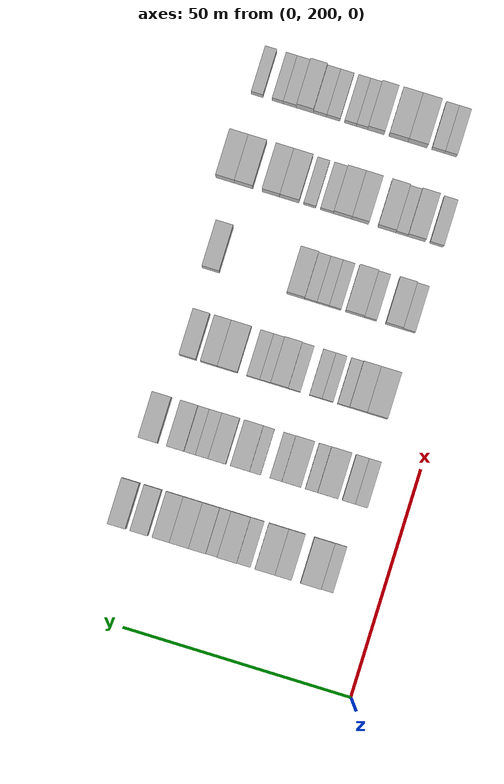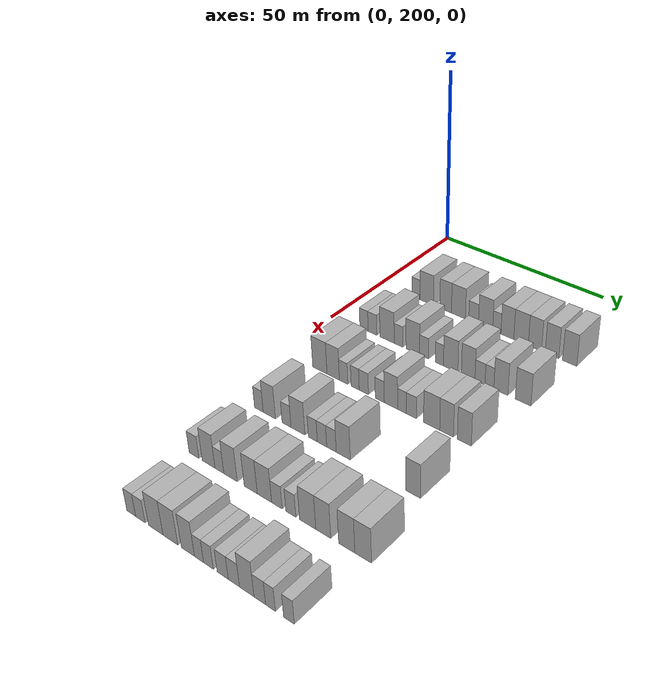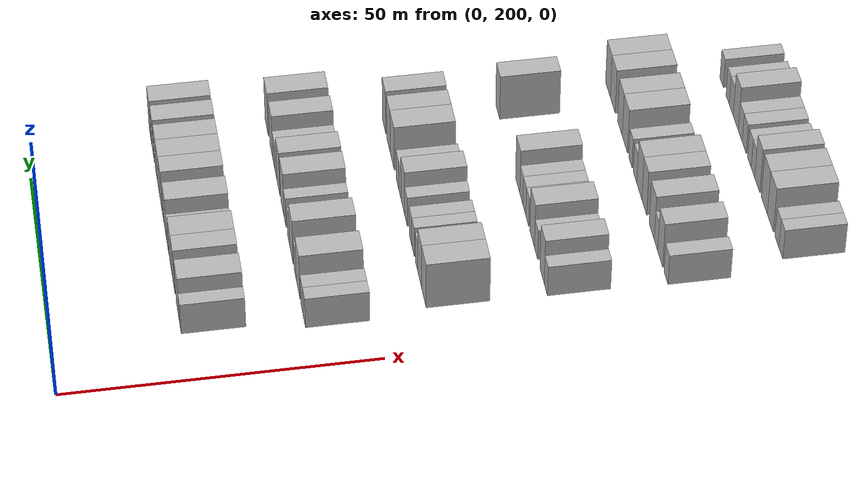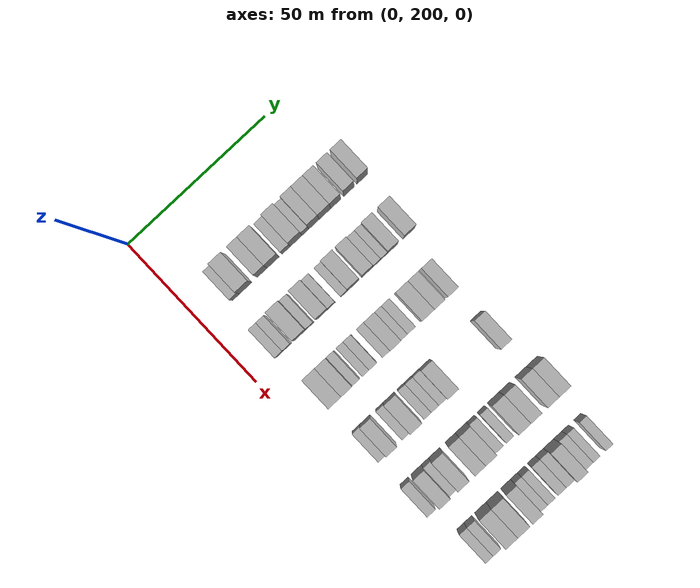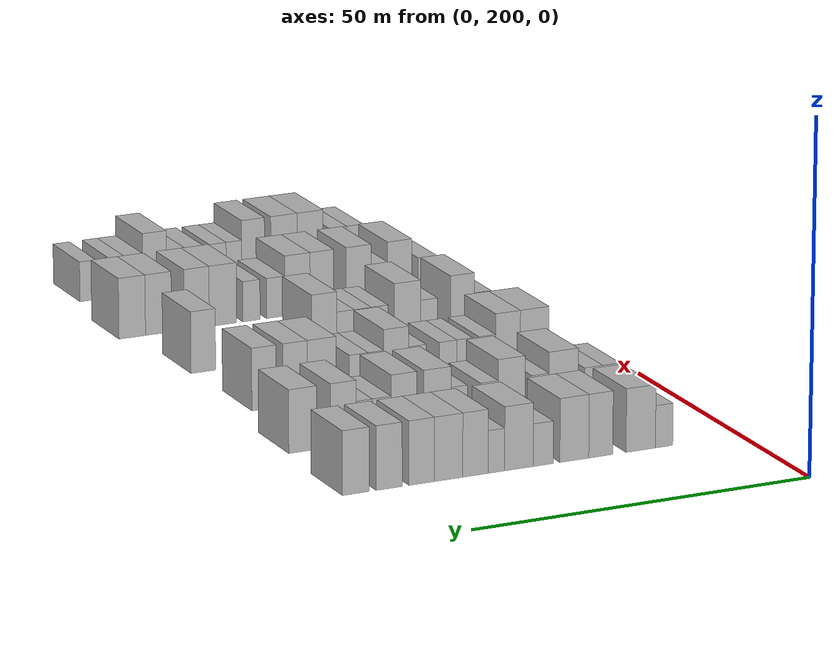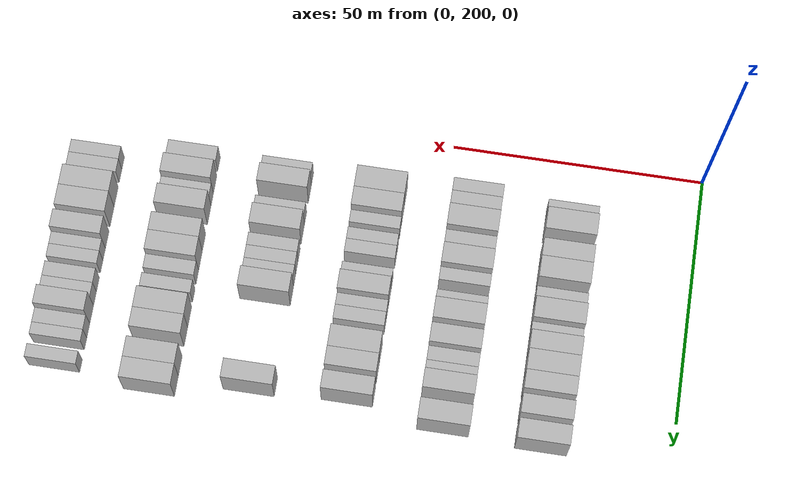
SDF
<sdf version="1.6">
 <world name="default">
  <model name="building_140">
   <static>1</static>
   <pose>25.0000 211.5356 0 0.000000 0.000000 0.000000</pose>
   <link name="link">
    <pose>0 0 3.00 0 0 0</pose>
    <collision name="collision"><geometry><box><size>10.0000 2.6254 6.0000</size></box></geometry></collision>
    <visual name="visual">
     <cast_shadows>0</cast_shadows>
     <geometry><box><size>10.0000 2.6254 6.0000</size></box></geometry>
     <material>
      <script>
       <uri>model://HANNAS_wall/materials/scripts</uri>
       <uri>model://HANNAS_wall/materials/textures</uri>
       <name>vrc/HANNAS_wall</name>
      </script>
     </material>
    </visual>
   </link>
  </model>
  <model name="building_141">
   <static>1</static>
   <pose>25.0000 215.0727 0 0.000000 0.000000 0.000000</pose>
   <link name="link">
    <pose>0 0 4.50 0 0 0</pose>
    <collision name="collision"><geometry><box><size>10.0000 4.4486 9.0000</size></box></geometry></collision>
    <visual name="visual">
     <cast_shadows>0</cast_shadows>
     <geometry><box><size>10.0000 4.4486 9.0000</size></box></geometry>
     <material>
      <script>
       <uri>model://HANNAS_wall/materials/scripts</uri>
       <uri>model://HANNAS_wall/materials/textures</uri>
       <name>vrc/HANNAS_wall</name>
      </script>
     </material>
    </visual>
   </link>
  </model>
  <model name="building_142">
   <static>1</static>
   <pose>25.0000 221.1062 0 0.000000 0.000000 0.000000</pose>
   <link name="link">
    <pose>0 0 4.50 0 0 0</pose>
    <collision name="collision"><geometry><box><size>10.0000 3.6184 9.0000</size></box></geometry></collision>
    <visual name="visual">
     <cast_shadows>0</cast_shadows>
     <geometry><box><size>10.0000 3.6184 9.0000</size></box></geometry>
     <material>
      <script>
       <uri>model://HANNAS_wall/materials/scripts</uri>
       <uri>model://HANNAS_wall/materials/textures</uri>
       <name>vrc/HANNAS_wall</name>
      </script>
     </material>
    </visual>
   </link>
  </model>
  <model name="building_143">
   <static>1</static>
   <pose>25.0000 225.0852 0 0.000000 0.000000 0.000000</pose>
   <link name="link">
    <pose>0 0 4.50 0 0 0</pose>
    <collision name="collision"><geometry><box><size>10.0000 4.3398 9.0000</size></box></geometry></collision>
    <visual name="visual">
     <cast_shadows>0</cast_shadows>
     <geometry><box><size>10.0000 4.3398 9.0000</size></box></geometry>
     <material>
      <script>
       <uri>model://HANNAS_wall/materials/scripts</uri>
       <uri>model://HANNAS_wall/materials/textures</uri>
       <name>vrc/HANNAS_wall</name>
      </script>
     </material>
    </visual>
   </link>
  </model>
  <model name="building_144">
   <static>1</static>
   <pose>25.0000 229.7429 0 0.000000 0.000000 0.000000</pose>
   <link name="link">
    <pose>0 0 3.00 0 0 0</pose>
    <collision name="collision"><geometry><box><size>10.0000 2.9756 6.0000</size></box></geometry></collision>
    <visual name="visual">
     <cast_shadows>0</cast_shadows>
     <geometry><box><size>10.0000 2.9756 6.0000</size></box></geometry>
     <material>
      <script>
       <uri>model://HANNAS_wall/materials/scripts</uri>
       <uri>model://HANNAS_wall/materials/textures</uri>
       <name>vrc/HANNAS_wall</name>
      </script>
     </material>
    </visual>
   </link>
  </model>
  <model name="building_145">
   <static>1</static>
   <pose>25.0000 233.3577 0 0.000000 0.000000 0.000000</pose>
   <link name="link">
    <pose>0 0 4.50 0 0 0</pose>
    <collision name="collision"><geometry><box><size>10.0000 4.2539 9.0000</size></box></geometry></collision>
    <visual name="visual">
     <cast_shadows>0</cast_shadows>
     <geometry><box><size>10.0000 4.2539 9.0000</size></box></geometry>
     <material>
      <script>
       <uri>model://HANNAS_wall/materials/scripts</uri>
       <uri>model://HANNAS_wall/materials/textures</uri>
       <name>vrc/HANNAS_wall</name>
      </script>
     </material>
    </visual>
   </link>
  </model>
  <model name="building_146">
   <static>1</static>
   <pose>25.0000 236.7160 0 0.000000 0.000000 0.000000</pose>
   <link name="link">
    <pose>0 0 3.00 0 0 0</pose>
    <collision name="collision"><geometry><box><size>10.0000 2.4627 6.0000</size></box></geometry></collision>
    <visual name="visual">
     <cast_shadows>0</cast_shadows>
     <geometry><box><size>10.0000 2.4627 6.0000</size></box></geometry>
     <material>
      <script>
       <uri>model://HANNAS_wall/materials/scripts</uri>
       <uri>model://HANNAS_wall/materials/textures</uri>
       <name>vrc/HANNAS_wall</name>
      </script>
     </material>
    </visual>
   </link>
  </model>
  <model name="building_147">
   <static>1</static>
   <pose>25.0000 239.8195 0 0.000000 0.000000 0.000000</pose>
   <link name="link">
    <pose>0 0 4.50 0 0 0</pose>
    <collision name="collision"><geometry><box><size>10.0000 3.7442 9.0000</size></box></geometry></collision>
    <visual name="visual">
     <cast_shadows>0</cast_shadows>
     <geometry><box><size>10.0000 3.7442 9.0000</size></box></geometry>
     <material>
      <script>
       <uri>model://HANNAS_wall/materials/scripts</uri>
       <uri>model://HANNAS_wall/materials/textures</uri>
       <name>vrc/HANNAS_wall</name>
      </script>
     </material>
    </visual>
   </link>
  </model>
  <model name="building_148">
   <static>1</static>
   <pose>25.0000 243.7803 0 0.000000 0.000000 0.000000</pose>
   <link name="link">
    <pose>0 0 4.50 0 0 0</pose>
    <collision name="collision"><geometry><box><size>10.0000 4.1774 9.0000</size></box></geometry></collision>
    <visual name="visual">
     <cast_shadows>0</cast_shadows>
     <geometry><box><size>10.0000 4.1774 9.0000</size></box></geometry>
     <material>
      <script>
       <uri>model://HANNAS_wall/materials/scripts</uri>
       <uri>model://HANNAS_wall/materials/textures</uri>
       <name>vrc/HANNAS_wall</name>
      </script>
     </material>
    </visual>
   </link>
  </model>
  <model name="building_149">
   <static>1</static>
   <pose>25.0000 247.7418 0 0.000000 0.000000 0.000000</pose>
   <link name="link">
    <pose>0 0 4.50 0 0 0</pose>
    <collision name="collision"><geometry><box><size>10.0000 3.7457 9.0000</size></box></geometry></collision>
    <visual name="visual">
     <cast_shadows>0</cast_shadows>
     <geometry><box><size>10.0000 3.7457 9.0000</size></box></geometry>
     <material>
      <script>
       <uri>model://HANNAS_wall/materials/scripts</uri>
       <uri>model://HANNAS_wall/materials/textures</uri>
       <name>vrc/HANNAS_wall</name>
      </script>
     </material>
    </visual>
   </link>
  </model>
  <model name="building_150">
   <static>1</static>
   <pose>25.0000 252.5206 0 0.000000 0.000000 0.000000</pose>
   <link name="link">
    <pose>0 0 4.50 0 0 0</pose>
    <collision name="collision"><geometry><box><size>10.0000 3.8118 9.0000</size></box></geometry></collision>
    <visual name="visual">
     <cast_shadows>0</cast_shadows>
     <geometry><box><size>10.0000 3.8118 9.0000</size></box></geometry>
     <material>
      <script>
       <uri>model://HANNAS_wall/materials/scripts</uri>
       <uri>model://HANNAS_wall/materials/textures</uri>
       <name>vrc/HANNAS_wall</name>
      </script>
     </material>
    </visual>
   </link>
  </model>
  <model name="building_151">
   <static>1</static>
   <pose>25.0000 257.3781 0 0.000000 0.000000 0.000000</pose>
   <link name="link">
    <pose>0 0 4.50 0 0 0</pose>
    <collision name="collision"><geometry><box><size>10.0000 3.9034 9.0000</size></box></geometry></collision>
    <visual name="visual">
     <cast_shadows>0</cast_shadows>
     <geometry><box><size>10.0000 3.9034 9.0000</size></box></geometry>
     <material>
      <script>
       <uri>model://HANNAS_wall/materials/scripts</uri>
       <uri>model://HANNAS_wall/materials/textures</uri>
       <name>vrc/HANNAS_wall</name>
      </script>
     </material>
    </visual>
   </link>
  </model>
  <model name="building_318">
   <static>1</static>
   <pose>44.0000 209.8806 0 0.000000 0.000000 0.000000</pose>
   <link name="link">
    <pose>0 0 3.00 0 0 0</pose>
    <collision name="collision"><geometry><box><size>10.0000 2.6604 6.0000</size></box></geometry></collision>
    <visual name="visual">
     <cast_shadows>0</cast_shadows>
     <geometry><box><size>10.0000 2.6604 6.0000</size></box></geometry>
     <material>
      <script>
       <uri>model://HANNAS_wall/materials/scripts</uri>
       <uri>model://HANNAS_wall/materials/textures</uri>
       <name>vrc/HANNAS_wall</name>
      </script>
     </material>
    </visual>
   </link>
  </model>
  <model name="building_319">
   <static>1</static>
   <pose>44.0000 212.6104 0 0.000000 0.000000 0.000000</pose>
   <link name="link">
    <pose>0 0 3.00 0 0 0</pose>
    <collision name="collision"><geometry><box><size>10.0000 2.7992 6.0000</size></box></geometry></collision>
    <visual name="visual">
     <cast_shadows>0</cast_shadows>
     <geometry><box><size>10.0000 2.7992 6.0000</size></box></geometry>
     <material>
      <script>
       <uri>model://HANNAS_wall/materials/scripts</uri>
       <uri>model://HANNAS_wall/materials/textures</uri>
       <name>vrc/HANNAS_wall</name>
      </script>
     </material>
    </visual>
   </link>
  </model>
  <model name="building_320">
   <static>1</static>
   <pose>44.0000 217.2324 0 0.000000 0.000000 0.000000</pose>
   <link name="link">
    <pose>0 0 4.50 0 0 0</pose>
    <collision name="collision"><geometry><box><size>10.0000 4.4450 9.0000</size></box></geometry></collision>
    <visual name="visual">
     <cast_shadows>0</cast_shadows>
     <geometry><box><size>10.0000 4.4450 9.0000</size></box></geometry>
     <material>
      <script>
       <uri>model://HANNAS_wall/materials/scripts</uri>
       <uri>model://HANNAS_wall/materials/textures</uri>
       <name>vrc/HANNAS_wall</name>
      </script>
     </material>
    </visual>
   </link>
  </model>
  <model name="building_321">
   <static>1</static>
   <pose>44.0000 220.7763 0 0.000000 0.000000 0.000000</pose>
   <link name="link">
    <pose>0 0 3.00 0 0 0</pose>
    <collision name="collision"><geometry><box><size>10.0000 2.6428 6.0000</size></box></geometry></collision>
    <visual name="visual">
     <cast_shadows>0</cast_shadows>
     <geometry><box><size>10.0000 2.6428 6.0000</size></box></geometry>
     <material>
      <script>
       <uri>model://HANNAS_wall/materials/scripts</uri>
       <uri>model://HANNAS_wall/materials/textures</uri>
       <name>vrc/HANNAS_wall</name>
      </script>
     </material>
    </visual>
   </link>
  </model>
  <model name="building_322">
   <static>1</static>
   <pose>44.0000 225.1639 0 0.000000 0.000000 0.000000</pose>
   <link name="link">
    <pose>0 0 4.50 0 0 0</pose>
    <collision name="collision"><geometry><box><size>10.0000 4.1323 9.0000</size></box></geometry></collision>
    <visual name="visual">
     <cast_shadows>0</cast_shadows>
     <geometry><box><size>10.0000 4.1323 9.0000</size></box></geometry>
     <material>
      <script>
       <uri>model://HANNAS_wall/materials/scripts</uri>
       <uri>model://HANNAS_wall/materials/textures</uri>
       <name>vrc/HANNAS_wall</name>
      </script>
     </material>
    </visual>
   </link>
  </model>
  <model name="building_323">
   <static>1</static>
   <pose>44.0000 228.5464 0 0.000000 0.000000 0.000000</pose>
   <link name="link">
    <pose>0 0 3.00 0 0 0</pose>
    <collision name="collision"><geometry><box><size>10.0000 2.6327 6.0000</size></box></geometry></collision>
    <visual name="visual">
     <cast_shadows>0</cast_shadows>
     <geometry><box><size>10.0000 2.6327 6.0000</size></box></geometry>
     <material>
      <script>
       <uri>model://HANNAS_wall/materials/scripts</uri>
       <uri>model://HANNAS_wall/materials/textures</uri>
       <name>vrc/HANNAS_wall</name>
      </script>
     </material>
    </visual>
   </link>
  </model>
  <model name="building_324">
   <static>1</static>
   <pose>44.0000 233.0702 0 0.000000 0.000000 0.000000</pose>
   <link name="link">
    <pose>0 0 3.00 0 0 0</pose>
    <collision name="collision"><geometry><box><size>10.0000 2.4149 6.0000</size></box></geometry></collision>
    <visual name="visual">
     <cast_shadows>0</cast_shadows>
     <geometry><box><size>10.0000 2.4149 6.0000</size></box></geometry>
     <material>
      <script>
       <uri>model://HANNAS_wall/materials/scripts</uri>
       <uri>model://HANNAS_wall/materials/textures</uri>
       <name>vrc/HANNAS_wall</name>
      </script>
     </material>
    </visual>
   </link>
  </model>
  <model name="building_325">
   <static>1</static>
   <pose>44.0000 236.3657 0 0.000000 0.000000 0.000000</pose>
   <link name="link">
    <pose>0 0 4.50 0 0 0</pose>
    <collision name="collision"><geometry><box><size>10.0000 4.1761 9.0000</size></box></geometry></collision>
    <visual name="visual">
     <cast_shadows>0</cast_shadows>
     <geometry><box><size>10.0000 4.1761 9.0000</size></box></geometry>
     <material>
      <script>
       <uri>model://HANNAS_wall/materials/scripts</uri>
       <uri>model://HANNAS_wall/materials/textures</uri>
       <name>vrc/HANNAS_wall</name>
      </script>
     </material>
    </visual>
   </link>
  </model>
  <model name="building_326">
   <static>1</static>
   <pose>44.0000 241.3848 0 0.000000 0.000000 0.000000</pose>
   <link name="link">
    <pose>0 0 4.50 0 0 0</pose>
    <collision name="collision"><geometry><box><size>10.0000 3.8622 9.0000</size></box></geometry></collision>
    <visual name="visual">
     <cast_shadows>0</cast_shadows>
     <geometry><box><size>10.0000 3.8622 9.0000</size></box></geometry>
     <material>
      <script>
       <uri>model://HANNAS_wall/materials/scripts</uri>
       <uri>model://HANNAS_wall/materials/textures</uri>
       <name>vrc/HANNAS_wall</name>
      </script>
     </material>
    </visual>
   </link>
  </model>
  <model name="building_327">
   <static>1</static>
   <pose>44.0000 244.7178 0 0.000000 0.000000 0.000000</pose>
   <link name="link">
    <pose>0 0 3.00 0 0 0</pose>
    <collision name="collision"><geometry><box><size>10.0000 2.8037 6.0000</size></box></geometry></collision>
    <visual name="visual">
     <cast_shadows>0</cast_shadows>
     <geometry><box><size>10.0000 2.8037 6.0000</size></box></geometry>
     <material>
      <script>
       <uri>model://HANNAS_wall/materials/scripts</uri>
       <uri>model://HANNAS_wall/materials/textures</uri>
       <name>vrc/HANNAS_wall</name>
      </script>
     </material>
    </visual>
   </link>
  </model>
  <model name="building_328">
   <static>1</static>
   <pose>44.0000 247.3366 0 0.000000 0.000000 0.000000</pose>
   <link name="link">
    <pose>0 0 3.00 0 0 0</pose>
    <collision name="collision"><geometry><box><size>10.0000 2.4340 6.0000</size></box></geometry></collision>
    <visual name="visual">
     <cast_shadows>0</cast_shadows>
     <geometry><box><size>10.0000 2.4340 6.0000</size></box></geometry>
     <material>
      <script>
       <uri>model://HANNAS_wall/materials/scripts</uri>
       <uri>model://HANNAS_wall/materials/textures</uri>
       <name>vrc/HANNAS_wall</name>
      </script>
     </material>
    </visual>
   </link>
  </model>
  <model name="building_329">
   <static>1</static>
   <pose>44.0000 250.4609 0 0.000000 0.000000 0.000000</pose>
   <link name="link">
    <pose>0 0 4.50 0 0 0</pose>
    <collision name="collision"><geometry><box><size>10.0000 3.8146 9.0000</size></box></geometry></collision>
    <visual name="visual">
     <cast_shadows>0</cast_shadows>
     <geometry><box><size>10.0000 3.8146 9.0000</size></box></geometry>
     <material>
      <script>
       <uri>model://HANNAS_wall/materials/scripts</uri>
       <uri>model://HANNAS_wall/materials/textures</uri>
       <name>vrc/HANNAS_wall</name>
      </script>
     </material>
    </visual>
   </link>
  </model>
  <model name="building_330">
   <static>1</static>
   <pose>44.0000 256.4477 0 0.000000 0.000000 0.000000</pose>
   <link name="link">
    <pose>0 0 4.50 0 0 0</pose>
    <collision name="collision"><geometry><box><size>10.0000 4.1590 9.0000</size></box></geometry></collision>
    <visual name="visual">
     <cast_shadows>0</cast_shadows>
     <geometry><box><size>10.0000 4.1590 9.0000</size></box></geometry>
     <material>
      <script>
       <uri>model://HANNAS_wall/materials/scripts</uri>
       <uri>model://HANNAS_wall/materials/textures</uri>
       <name>vrc/HANNAS_wall</name>
      </script>
     </material>
    </visual>
   </link>
  </model>
  <model name="building_498">
   <static>1</static>
   <pose>63.0000 212.2461 0 0.000000 0.000000 0.000000</pose>
   <link name="link">
    <pose>0 0 4.50 0 0 0</pose>
    <collision name="collision"><geometry><box><size>10.0000 4.4613 9.0000</size></box></geometry></collision>
    <visual name="visual">
     <cast_shadows>0</cast_shadows>
     <geometry><box><size>10.0000 4.4613 9.0000</size></box></geometry>
     <material>
      <script>
       <uri>model://HANNAS_wall/materials/scripts</uri>
       <uri>model://HANNAS_wall/materials/textures</uri>
       <name>vrc/HANNAS_wall</name>
      </script>
     </material>
    </visual>
   </link>
  </model>
  <model name="building_499">
   <static>1</static>
   <pose>63.0000 216.3930 0 0.000000 0.000000 0.000000</pose>
   <link name="link">
    <pose>0 0 4.50 0 0 0</pose>
    <collision name="collision"><geometry><box><size>10.0000 3.8325 9.0000</size></box></geometry></collision>
    <visual name="visual">
     <cast_shadows>0</cast_shadows>
     <geometry><box><size>10.0000 3.8325 9.0000</size></box></geometry>
     <material>
      <script>
       <uri>model://HANNAS_wall/materials/scripts</uri>
       <uri>model://HANNAS_wall/materials/textures</uri>
       <name>vrc/HANNAS_wall</name>
      </script>
     </material>
    </visual>
   </link>
  </model>
  <model name="building_500">
   <static>1</static>
   <pose>63.0000 219.5952 0 0.000000 0.000000 0.000000</pose>
   <link name="link">
    <pose>0 0 3.00 0 0 0</pose>
    <collision name="collision"><geometry><box><size>10.0000 2.5718 6.0000</size></box></geometry></collision>
    <visual name="visual">
     <cast_shadows>0</cast_shadows>
     <geometry><box><size>10.0000 2.5718 6.0000</size></box></geometry>
     <material>
      <script>
       <uri>model://HANNAS_wall/materials/scripts</uri>
       <uri>model://HANNAS_wall/materials/textures</uri>
       <name>vrc/HANNAS_wall</name>
      </script>
     </material>
    </visual>
   </link>
  </model>
  <model name="building_501">
   <static>1</static>
   <pose>63.0000 223.0899 0 0.000000 0.000000 0.000000</pose>
   <link name="link">
    <pose>0 0 3.00 0 0 0</pose>
    <collision name="collision"><geometry><box><size>10.0000 2.4177 6.0000</size></box></geometry></collision>
    <visual name="visual">
     <cast_shadows>0</cast_shadows>
     <geometry><box><size>10.0000 2.4177 6.0000</size></box></geometry>
     <material>
      <script>
       <uri>model://HANNAS_wall/materials/scripts</uri>
       <uri>model://HANNAS_wall/materials/textures</uri>
       <name>vrc/HANNAS_wall</name>
      </script>
     </material>
    </visual>
   </link>
  </model>
  <model name="building_502">
   <static>1</static>
   <pose>63.0000 225.6709 0 0.000000 0.000000 0.000000</pose>
   <link name="link">
    <pose>0 0 3.00 0 0 0</pose>
    <collision name="collision"><geometry><box><size>10.0000 2.7441 6.0000</size></box></geometry></collision>
    <visual name="visual">
     <cast_shadows>0</cast_shadows>
     <geometry><box><size>10.0000 2.7441 6.0000</size></box></geometry>
     <material>
      <script>
       <uri>model://HANNAS_wall/materials/scripts</uri>
       <uri>model://HANNAS_wall/materials/textures</uri>
       <name>vrc/HANNAS_wall</name>
      </script>
     </material>
    </visual>
   </link>
  </model>
  <model name="building_503">
   <static>1</static>
   <pose>63.0000 230.3555 0 0.000000 0.000000 0.000000</pose>
   <link name="link">
    <pose>0 0 3.00 0 0 0</pose>
    <collision name="collision"><geometry><box><size>10.0000 2.6252 6.0000</size></box></geometry></collision>
    <visual name="visual">
     <cast_shadows>0</cast_shadows>
     <geometry><box><size>10.0000 2.6252 6.0000</size></box></geometry>
     <material>
      <script>
       <uri>model://HANNAS_wall/materials/scripts</uri>
       <uri>model://HANNAS_wall/materials/textures</uri>
       <name>vrc/HANNAS_wall</name>
      </script>
     </material>
    </visual>
   </link>
  </model>
  <model name="building_504">
   <static>1</static>
   <pose>63.0000 233.5890 0 0.000000 0.000000 0.000000</pose>
   <link name="link">
    <pose>0 0 4.50 0 0 0</pose>
    <collision name="collision"><geometry><box><size>10.0000 3.8418 9.0000</size></box></geometry></collision>
    <visual name="visual">
     <cast_shadows>0</cast_shadows>
     <geometry><box><size>10.0000 3.8418 9.0000</size></box></geometry>
     <material>
      <script>
       <uri>model://HANNAS_wall/materials/scripts</uri>
       <uri>model://HANNAS_wall/materials/textures</uri>
       <name>vrc/HANNAS_wall</name>
      </script>
     </material>
    </visual>
   </link>
  </model>
  <model name="building_505">
   <static>1</static>
   <pose>63.0000 236.7105 0 0.000000 0.000000 0.000000</pose>
   <link name="link">
    <pose>0 0 3.00 0 0 0</pose>
    <collision name="collision"><geometry><box><size>10.0000 2.4013 6.0000</size></box></geometry></collision>
    <visual name="visual">
     <cast_shadows>0</cast_shadows>
     <geometry><box><size>10.0000 2.4013 6.0000</size></box></geometry>
     <material>
      <script>
       <uri>model://HANNAS_wall/materials/scripts</uri>
       <uri>model://HANNAS_wall/materials/textures</uri>
       <name>vrc/HANNAS_wall</name>
      </script>
     </material>
    </visual>
   </link>
  </model>
  <model name="building_506">
   <static>1</static>
   <pose>63.0000 239.3358 0 0.000000 0.000000 0.000000</pose>
   <link name="link">
    <pose>0 0 3.00 0 0 0</pose>
    <collision name="collision"><geometry><box><size>10.0000 2.8493 6.0000</size></box></geometry></collision>
    <visual name="visual">
     <cast_shadows>0</cast_shadows>
     <geometry><box><size>10.0000 2.8493 6.0000</size></box></geometry>
     <material>
      <script>
       <uri>model://HANNAS_wall/materials/scripts</uri>
       <uri>model://HANNAS_wall/materials/textures</uri>
       <name>vrc/HANNAS_wall</name>
      </script>
     </material>
    </visual>
   </link>
  </model>
  <model name="building_507">
   <static>1</static>
   <pose>63.0000 244.9521 0 0.000000 0.000000 0.000000</pose>
   <link name="link">
    <pose>0 0 4.50 0 0 0</pose>
    <collision name="collision"><geometry><box><size>10.0000 4.3834 9.0000</size></box></geometry></collision>
    <visual name="visual">
     <cast_shadows>0</cast_shadows>
     <geometry><box><size>10.0000 4.3834 9.0000</size></box></geometry>
     <material>
      <script>
       <uri>model://HANNAS_wall/materials/scripts</uri>
       <uri>model://HANNAS_wall/materials/textures</uri>
       <name>vrc/HANNAS_wall</name>
      </script>
     </material>
    </visual>
   </link>
  </model>
  <model name="building_508">
   <static>1</static>
   <pose>63.0000 248.9910 0 0.000000 0.000000 0.000000</pose>
   <link name="link">
    <pose>0 0 4.50 0 0 0</pose>
    <collision name="collision"><geometry><box><size>10.0000 3.6943 9.0000</size></box></geometry></collision>
    <visual name="visual">
     <cast_shadows>0</cast_shadows>
     <geometry><box><size>10.0000 3.6943 9.0000</size></box></geometry>
     <material>
      <script>
       <uri>model://HANNAS_wall/materials/scripts</uri>
       <uri>model://HANNAS_wall/materials/textures</uri>
       <name>vrc/HANNAS_wall</name>
      </script>
     </material>
    </visual>
   </link>
  </model>
  <model name="building_509">
   <static>1</static>
   <pose>63.0000 253.6693 0 0.000000 0.000000 0.000000</pose>
   <link name="link">
    <pose>0 0 4.50 0 0 0</pose>
    <collision name="collision"><geometry><box><size>10.0000 3.6624 9.0000</size></box></geometry></collision>
    <visual name="visual">
     <cast_shadows>0</cast_shadows>
     <geometry><box><size>10.0000 3.6624 9.0000</size></box></geometry>
     <material>
      <script>
       <uri>model://HANNAS_wall/materials/scripts</uri>
       <uri>model://HANNAS_wall/materials/textures</uri>
       <name>vrc/HANNAS_wall</name>
      </script>
     </material>
    </visual>
   </link>
  </model>
  <model name="building_675">
   <static>1</static>
   <pose>82.0000 211.0861 0 0.000000 0.000000 0.000000</pose>
   <link name="link">
    <pose>0 0 3.00 0 0 0</pose>
    <collision name="collision"><geometry><box><size>10.0000 2.6873 6.0000</size></box></geometry></collision>
    <visual name="visual">
     <cast_shadows>0</cast_shadows>
     <geometry><box><size>10.0000 2.6873 6.0000</size></box></geometry>
     <material>
      <script>
       <uri>model://HANNAS_wall/materials/scripts</uri>
       <uri>model://HANNAS_wall/materials/textures</uri>
       <name>vrc/HANNAS_wall</name>
      </script>
     </material>
    </visual>
   </link>
  </model>
  <model name="building_676">
   <static>1</static>
   <pose>82.0000 214.3071 0 0.000000 0.000000 0.000000</pose>
   <link name="link">
    <pose>0 0 4.50 0 0 0</pose>
    <collision name="collision"><geometry><box><size>10.0000 3.7546 9.0000</size></box></geometry></collision>
    <visual name="visual">
     <cast_shadows>0</cast_shadows>
     <geometry><box><size>10.0000 3.7546 9.0000</size></box></geometry>
     <material>
      <script>
       <uri>model://HANNAS_wall/materials/scripts</uri>
       <uri>model://HANNAS_wall/materials/textures</uri>
       <name>vrc/HANNAS_wall</name>
      </script>
     </material>
    </visual>
   </link>
  </model>
  <model name="building_677">
   <static>1</static>
   <pose>82.0000 219.5152 0 0.000000 0.000000 0.000000</pose>
   <link name="link">
    <pose>0 0 3.00 0 0 0</pose>
    <collision name="collision"><geometry><box><size>10.0000 2.6616 6.0000</size></box></geometry></collision>
    <visual name="visual">
     <cast_shadows>0</cast_shadows>
     <geometry><box><size>10.0000 2.6616 6.0000</size></box></geometry>
     <material>
      <script>
       <uri>model://HANNAS_wall/materials/scripts</uri>
       <uri>model://HANNAS_wall/materials/textures</uri>
       <name>vrc/HANNAS_wall</name>
      </script>
     </material>
    </visual>
   </link>
  </model>
  <model name="building_678">
   <static>1</static>
   <pose>82.0000 222.9070 0 0.000000 0.000000 0.000000</pose>
   <link name="link">
    <pose>0 0 4.50 0 0 0</pose>
    <collision name="collision"><geometry><box><size>10.0000 4.1220 9.0000</size></box></geometry></collision>
    <visual name="visual">
     <cast_shadows>0</cast_shadows>
     <geometry><box><size>10.0000 4.1220 9.0000</size></box></geometry>
     <material>
      <script>
       <uri>model://HANNAS_wall/materials/scripts</uri>
       <uri>model://HANNAS_wall/materials/textures</uri>
       <name>vrc/HANNAS_wall</name>
      </script>
     </material>
    </visual>
   </link>
  </model>
  <model name="building_679">
   <static>1</static>
   <pose>82.0000 227.2678 0 0.000000 0.000000 0.000000</pose>
   <link name="link">
    <pose>0 0 3.00 0 0 0</pose>
    <collision name="collision"><geometry><box><size>10.0000 2.5996 6.0000</size></box></geometry></collision>
    <visual name="visual">
     <cast_shadows>0</cast_shadows>
     <geometry><box><size>10.0000 2.5996 6.0000</size></box></geometry>
     <material>
      <script>
       <uri>model://HANNAS_wall/materials/scripts</uri>
       <uri>model://HANNAS_wall/materials/textures</uri>
       <name>vrc/HANNAS_wall</name>
      </script>
     </material>
    </visual>
   </link>
  </model>
  <model name="building_680">
   <static>1</static>
   <pose>82.0000 229.9038 0 0.000000 0.000000 0.000000</pose>
   <link name="link">
    <pose>0 0 3.00 0 0 0</pose>
    <collision name="collision"><geometry><box><size>10.0000 2.6724 6.0000</size></box></geometry></collision>
    <visual name="visual">
     <cast_shadows>0</cast_shadows>
     <geometry><box><size>10.0000 2.6724 6.0000</size></box></geometry>
     <material>
      <script>
       <uri>model://HANNAS_wall/materials/scripts</uri>
       <uri>model://HANNAS_wall/materials/textures</uri>
       <name>vrc/HANNAS_wall</name>
      </script>
     </material>
    </visual>
   </link>
  </model>
  <model name="building_681">
   <static>1</static>
   <pose>82.0000 232.5769 0 0.000000 0.000000 0.000000</pose>
   <link name="link">
    <pose>0 0 3.00 0 0 0</pose>
    <collision name="collision"><geometry><box><size>10.0000 2.6739 6.0000</size></box></geometry></collision>
    <visual name="visual">
     <cast_shadows>0</cast_shadows>
     <geometry><box><size>10.0000 2.6739 6.0000</size></box></geometry>
     <material>
      <script>
       <uri>model://HANNAS_wall/materials/scripts</uri>
       <uri>model://HANNAS_wall/materials/textures</uri>
       <name>vrc/HANNAS_wall</name>
      </script>
     </material>
    </visual>
   </link>
  </model>
  <model name="building_682">
   <static>1</static>
   <pose>82.0000 235.8714 0 0.000000 0.000000 0.000000</pose>
   <link name="link">
    <pose>0 0 4.50 0 0 0</pose>
    <collision name="collision"><geometry><box><size>10.0000 3.9151 9.0000</size></box></geometry></collision>
    <visual name="visual">
     <cast_shadows>0</cast_shadows>
     <geometry><box><size>10.0000 3.9151 9.0000</size></box></geometry>
     <material>
      <script>
       <uri>model://HANNAS_wall/materials/scripts</uri>
       <uri>model://HANNAS_wall/materials/textures</uri>
       <name>vrc/HANNAS_wall</name>
      </script>
     </material>
    </visual>
   </link>
  </model>
  <model name="building_683">
   <static>1</static>
   <pose>82.0000 254.4719 0 0.000000 0.000000 0.000000</pose>
   <link name="link">
    <pose>0 0 4.50 0 0 0</pose>
    <collision name="collision"><geometry><box><size>10.0000 3.7619 9.0000</size></box></geometry></collision>
    <visual name="visual">
     <cast_shadows>0</cast_shadows>
     <geometry><box><size>10.0000 3.7619 9.0000</size></box></geometry>
     <material>
      <script>
       <uri>model://HANNAS_wall/materials/scripts</uri>
       <uri>model://HANNAS_wall/materials/textures</uri>
       <name>vrc/HANNAS_wall</name>
      </script>
     </material>
    </visual>
   </link>
  </model>
  <model name="building_849">
   <static>1</static>
   <pose>101.0000 210.7906 0 0.000000 0.000000 0.000000</pose>
   <link name="link">
    <pose>0 0 3.00 0 0 0</pose>
    <collision name="collision"><geometry><box><size>10.0000 2.9784 6.0000</size></box></geometry></collision>
    <visual name="visual">
     <cast_shadows>0</cast_shadows>
     <geometry><box><size>10.0000 2.9784 6.0000</size></box></geometry>
     <material>
      <script>
       <uri>model://HANNAS_wall/materials/scripts</uri>
       <uri>model://HANNAS_wall/materials/textures</uri>
       <name>vrc/HANNAS_wall</name>
      </script>
     </material>
    </visual>
   </link>
  </model>
  <model name="building_850">
   <static>1</static>
   <pose>101.0000 215.2058 0 0.000000 0.000000 0.000000</pose>
   <link name="link">
    <pose>0 0 4.50 0 0 0</pose>
    <collision name="collision"><geometry><box><size>10.0000 3.8519 9.0000</size></box></geometry></collision>
    <visual name="visual">
     <cast_shadows>0</cast_shadows>
     <geometry><box><size>10.0000 3.8519 9.0000</size></box></geometry>
     <material>
      <script>
       <uri>model://HANNAS_wall/materials/scripts</uri>
       <uri>model://HANNAS_wall/materials/textures</uri>
       <name>vrc/HANNAS_wall</name>
      </script>
     </material>
    </visual>
   </link>
  </model>
  <model name="building_851">
   <static>1</static>
   <pose>101.0000 218.4455 0 0.000000 0.000000 0.000000</pose>
   <link name="link">
    <pose>0 0 3.00 0 0 0</pose>
    <collision name="collision"><geometry><box><size>10.0000 2.6275 6.0000</size></box></geometry></collision>
    <visual name="visual">
     <cast_shadows>0</cast_shadows>
     <geometry><box><size>10.0000 2.6275 6.0000</size></box></geometry>
     <material>
      <script>
       <uri>model://HANNAS_wall/materials/scripts</uri>
       <uri>model://HANNAS_wall/materials/textures</uri>
       <name>vrc/HANNAS_wall</name>
      </script>
     </material>
    </visual>
   </link>
  </model>
  <model name="building_852">
   <static>1</static>
   <pose>101.0000 221.7292 0 0.000000 0.000000 0.000000</pose>
   <link name="link">
    <pose>0 0 4.50 0 0 0</pose>
    <collision name="collision"><geometry><box><size>10.0000 3.9400 9.0000</size></box></geometry></collision>
    <visual name="visual">
     <cast_shadows>0</cast_shadows>
     <geometry><box><size>10.0000 3.9400 9.0000</size></box></geometry>
     <material>
      <script>
       <uri>model://HANNAS_wall/materials/scripts</uri>
       <uri>model://HANNAS_wall/materials/textures</uri>
       <name>vrc/HANNAS_wall</name>
      </script>
     </material>
    </visual>
   </link>
  </model>
  <model name="building_853">
   <static>1</static>
   <pose>101.0000 227.5604 0 0.000000 0.000000 0.000000</pose>
   <link name="link">
    <pose>0 0 4.50 0 0 0</pose>
    <collision name="collision"><geometry><box><size>10.0000 3.7224 9.0000</size></box></geometry></collision>
    <visual name="visual">
     <cast_shadows>0</cast_shadows>
     <geometry><box><size>10.0000 3.7224 9.0000</size></box></geometry>
     <material>
      <script>
       <uri>model://HANNAS_wall/materials/scripts</uri>
       <uri>model://HANNAS_wall/materials/textures</uri>
       <name>vrc/HANNAS_wall</name>
      </script>
     </material>
    </visual>
   </link>
  </model>
  <model name="building_854">
   <static>1</static>
   <pose>101.0000 231.4228 0 0.000000 0.000000 0.000000</pose>
   <link name="link">
    <pose>0 0 4.50 0 0 0</pose>
    <collision name="collision"><geometry><box><size>10.0000 4.0024 9.0000</size></box></geometry></collision>
    <visual name="visual">
     <cast_shadows>0</cast_shadows>
     <geometry><box><size>10.0000 4.0024 9.0000</size></box></geometry>
     <material>
      <script>
       <uri>model://HANNAS_wall/materials/scripts</uri>
       <uri>model://HANNAS_wall/materials/textures</uri>
       <name>vrc/HANNAS_wall</name>
      </script>
     </material>
    </visual>
   </link>
  </model>
  <model name="building_855">
   <static>1</static>
   <pose>101.0000 234.8669 0 0.000000 0.000000 0.000000</pose>
   <link name="link">
    <pose>0 0 3.00 0 0 0</pose>
    <collision name="collision"><geometry><box><size>10.0000 2.8857 6.0000</size></box></geometry></collision>
    <visual name="visual">
     <cast_shadows>0</cast_shadows>
     <geometry><box><size>10.0000 2.8857 6.0000</size></box></geometry>
     <material>
      <script>
       <uri>model://HANNAS_wall/materials/scripts</uri>
       <uri>model://HANNAS_wall/materials/textures</uri>
       <name>vrc/HANNAS_wall</name>
      </script>
     </material>
    </visual>
   </link>
  </model>
  <model name="building_856">
   <static>1</static>
   <pose>101.0000 238.6498 0 0.000000 0.000000 0.000000</pose>
   <link name="link">
    <pose>0 0 3.00 0 0 0</pose>
    <collision name="collision"><geometry><box><size>10.0000 2.6801 6.0000</size></box></geometry></collision>
    <visual name="visual">
     <cast_shadows>0</cast_shadows>
     <geometry><box><size>10.0000 2.6801 6.0000</size></box></geometry>
     <material>
      <script>
       <uri>model://HANNAS_wall/materials/scripts</uri>
       <uri>model://HANNAS_wall/materials/textures</uri>
       <name>vrc/HANNAS_wall</name>
      </script>
     </material>
    </visual>
   </link>
  </model>
  <model name="building_857">
   <static>1</static>
   <pose>101.0000 243.1122 0 0.000000 0.000000 0.000000</pose>
   <link name="link">
    <pose>0 0 4.50 0 0 0</pose>
    <collision name="collision"><geometry><box><size>10.0000 4.2446 9.0000</size></box></geometry></collision>
    <visual name="visual">
     <cast_shadows>0</cast_shadows>
     <geometry><box><size>10.0000 4.2446 9.0000</size></box></geometry>
     <material>
      <script>
       <uri>model://HANNAS_wall/materials/scripts</uri>
       <uri>model://HANNAS_wall/materials/textures</uri>
       <name>vrc/HANNAS_wall</name>
      </script>
     </material>
    </visual>
   </link>
  </model>
  <model name="building_858">
   <static>1</static>
   <pose>101.0000 247.1747 0 0.000000 0.000000 0.000000</pose>
   <link name="link">
    <pose>0 0 4.50 0 0 0</pose>
    <collision name="collision"><geometry><box><size>10.0000 3.8803 9.0000</size></box></geometry></collision>
    <visual name="visual">
     <cast_shadows>0</cast_shadows>
     <geometry><box><size>10.0000 3.8803 9.0000</size></box></geometry>
     <material>
      <script>
       <uri>model://HANNAS_wall/materials/scripts</uri>
       <uri>model://HANNAS_wall/materials/textures</uri>
       <name>vrc/HANNAS_wall</name>
      </script>
     </material>
    </visual>
   </link>
  </model>
  <model name="building_859">
   <static>1</static>
   <pose>101.0000 253.1330 0 0.000000 0.000000 0.000000</pose>
   <link name="link">
    <pose>0 0 4.50 0 0 0</pose>
    <collision name="collision"><geometry><box><size>10.0000 4.0364 9.0000</size></box></geometry></collision>
    <visual name="visual">
     <cast_shadows>0</cast_shadows>
     <geometry><box><size>10.0000 4.0364 9.0000</size></box></geometry>
     <material>
      <script>
       <uri>model://HANNAS_wall/materials/scripts</uri>
       <uri>model://HANNAS_wall/materials/textures</uri>
       <name>vrc/HANNAS_wall</name>
      </script>
     </material>
    </visual>
   </link>
  </model>
  <model name="building_860">
   <static>1</static>
   <pose>101.0000 257.1937 0 0.000000 0.000000 0.000000</pose>
   <link name="link">
    <pose>0 0 4.50 0 0 0</pose>
    <collision name="collision"><geometry><box><size>10.0000 4.0850 9.0000</size></box></geometry></collision>
    <visual name="visual">
     <cast_shadows>0</cast_shadows>
     <geometry><box><size>10.0000 4.0850 9.0000</size></box></geometry>
     <material>
      <script>
       <uri>model://HANNAS_wall/materials/scripts</uri>
       <uri>model://HANNAS_wall/materials/textures</uri>
       <name>vrc/HANNAS_wall</name>
      </script>
     </material>
    </visual>
   </link>
  </model>
  <model name="building_1030">
   <static>1</static>
   <pose>120.0000 213.5225 0 0.000000 0.000000 0.000000</pose>
   <link name="link">
    <pose>0 0 3.00 0 0 0</pose>
    <collision name="collision"><geometry><box><size>10.0000 2.6724 6.0000</size></box></geometry></collision>
    <visual name="visual">
     <cast_shadows>0</cast_shadows>
     <geometry><box><size>10.0000 2.6724 6.0000</size></box></geometry>
     <material>
      <script>
       <uri>model://HANNAS_wall/materials/scripts</uri>
       <uri>model://HANNAS_wall/materials/textures</uri>
       <name>vrc/HANNAS_wall</name>
      </script>
     </material>
    </visual>
   </link>
  </model>
  <model name="building_1031">
   <static>1</static>
   <pose>120.0000 216.2609 0 0.000000 0.000000 0.000000</pose>
   <link name="link">
    <pose>0 0 3.00 0 0 0</pose>
    <collision name="collision"><geometry><box><size>10.0000 2.8044 6.0000</size></box></geometry></collision>
    <visual name="visual">
     <cast_shadows>0</cast_shadows>
     <geometry><box><size>10.0000 2.8044 6.0000</size></box></geometry>
     <material>
      <script>
       <uri>model://HANNAS_wall/materials/scripts</uri>
       <uri>model://HANNAS_wall/materials/textures</uri>
       <name>vrc/HANNAS_wall</name>
      </script>
     </material>
    </visual>
   </link>
  </model>
  <model name="building_1032">
   <static>1</static>
   <pose>120.0000 220.7694 0 0.000000 0.000000 0.000000</pose>
   <link name="link">
    <pose>0 0 4.50 0 0 0</pose>
    <collision name="collision"><geometry><box><size>10.0000 4.2127 9.0000</size></box></geometry></collision>
    <visual name="visual">
     <cast_shadows>0</cast_shadows>
     <geometry><box><size>10.0000 4.2127 9.0000</size></box></geometry>
     <material>
      <script>
       <uri>model://HANNAS_wall/materials/scripts</uri>
       <uri>model://HANNAS_wall/materials/textures</uri>
       <name>vrc/HANNAS_wall</name>
      </script>
     </material>
    </visual>
   </link>
  </model>
  <model name="building_1033">
   <static>1</static>
   <pose>120.0000 224.9871 0 0.000000 0.000000 0.000000</pose>
   <link name="link">
    <pose>0 0 4.50 0 0 0</pose>
    <collision name="collision"><geometry><box><size>10.0000 4.2227 9.0000</size></box></geometry></collision>
    <visual name="visual">
     <cast_shadows>0</cast_shadows>
     <geometry><box><size>10.0000 4.2227 9.0000</size></box></geometry>
     <material>
      <script>
       <uri>model://HANNAS_wall/materials/scripts</uri>
       <uri>model://HANNAS_wall/materials/textures</uri>
       <name>vrc/HANNAS_wall</name>
      </script>
     </material>
    </visual>
   </link>
  </model>
  <model name="building_1034">
   <static>1</static>
   <pose>120.0000 229.9200 0 0.000000 0.000000 0.000000</pose>
   <link name="link">
    <pose>0 0 4.50 0 0 0</pose>
    <collision name="collision"><geometry><box><size>10.0000 3.6430 9.0000</size></box></geometry></collision>
    <visual name="visual">
     <cast_shadows>0</cast_shadows>
     <geometry><box><size>10.0000 3.6430 9.0000</size></box></geometry>
     <material>
      <script>
       <uri>model://HANNAS_wall/materials/scripts</uri>
       <uri>model://HANNAS_wall/materials/textures</uri>
       <name>vrc/HANNAS_wall</name>
      </script>
     </material>
    </visual>
   </link>
  </model>
  <model name="building_1035">
   <static>1</static>
   <pose>120.0000 232.9800 0 0.000000 0.000000 0.000000</pose>
   <link name="link">
    <pose>0 0 3.00 0 0 0</pose>
    <collision name="collision"><geometry><box><size>10.0000 2.4770 6.0000</size></box></geometry></collision>
    <visual name="visual">
     <cast_shadows>0</cast_shadows>
     <geometry><box><size>10.0000 2.4770 6.0000</size></box></geometry>
     <material>
      <script>
       <uri>model://HANNAS_wall/materials/scripts</uri>
       <uri>model://HANNAS_wall/materials/textures</uri>
       <name>vrc/HANNAS_wall</name>
      </script>
     </material>
    </visual>
   </link>
  </model>
  <model name="building_1036">
   <static>1</static>
   <pose>120.0000 235.5376 0 0.000000 0.000000 0.000000</pose>
   <link name="link">
    <pose>0 0 3.00 0 0 0</pose>
    <collision name="collision"><geometry><box><size>10.0000 2.6382 6.0000</size></box></geometry></collision>
    <visual name="visual">
     <cast_shadows>0</cast_shadows>
     <geometry><box><size>10.0000 2.6382 6.0000</size></box></geometry>
     <material>
      <script>
       <uri>model://HANNAS_wall/materials/scripts</uri>
       <uri>model://HANNAS_wall/materials/textures</uri>
       <name>vrc/HANNAS_wall</name>
      </script>
     </material>
    </visual>
   </link>
  </model>
  <model name="building_1037">
   <static>1</static>
   <pose>120.0000 239.3217 0 0.000000 0.000000 0.000000</pose>
   <link name="link">
    <pose>0 0 3.00 0 0 0</pose>
    <collision name="collision"><geometry><box><size>10.0000 2.9301 6.0000</size></box></geometry></collision>
    <visual name="visual">
     <cast_shadows>0</cast_shadows>
     <geometry><box><size>10.0000 2.9301 6.0000</size></box></geometry>
     <material>
      <script>
       <uri>model://HANNAS_wall/materials/scripts</uri>
       <uri>model://HANNAS_wall/materials/textures</uri>
       <name>vrc/HANNAS_wall</name>
      </script>
     </material>
    </visual>
   </link>
  </model>
  <model name="building_1038">
   <static>1</static>
   <pose>120.0000 242.2388 0 0.000000 0.000000 0.000000</pose>
   <link name="link">
    <pose>0 0 3.00 0 0 0</pose>
    <collision name="collision"><geometry><box><size>10.0000 2.9041 6.0000</size></box></geometry></collision>
    <visual name="visual">
     <cast_shadows>0</cast_shadows>
     <geometry><box><size>10.0000 2.9041 6.0000</size></box></geometry>
     <material>
      <script>
       <uri>model://HANNAS_wall/materials/scripts</uri>
       <uri>model://HANNAS_wall/materials/textures</uri>
       <name>vrc/HANNAS_wall</name>
      </script>
     </material>
    </visual>
   </link>
  </model>
  <model name="building_1039">
   <static>1</static>
   <pose>120.0000 245.5564 0 0.000000 0.000000 0.000000</pose>
   <link name="link">
    <pose>0 0 4.50 0 0 0</pose>
    <collision name="collision"><geometry><box><size>10.0000 3.7311 9.0000</size></box></geometry></collision>
    <visual name="visual">
     <cast_shadows>0</cast_shadows>
     <geometry><box><size>10.0000 3.7311 9.0000</size></box></geometry>
     <material>
      <script>
       <uri>model://HANNAS_wall/materials/scripts</uri>
       <uri>model://HANNAS_wall/materials/textures</uri>
       <name>vrc/HANNAS_wall</name>
      </script>
     </material>
    </visual>
   </link>
  </model>
  <model name="building_1040">
   <static>1</static>
   <pose>120.0000 248.8775 0 0.000000 0.000000 0.000000</pose>
   <link name="link">
    <pose>0 0 3.00 0 0 0</pose>
    <collision name="collision"><geometry><box><size>10.0000 2.9110 6.0000</size></box></geometry></collision>
    <visual name="visual">
     <cast_shadows>0</cast_shadows>
     <geometry><box><size>10.0000 2.9110 6.0000</size></box></geometry>
     <material>
      <script>
       <uri>model://HANNAS_wall/materials/scripts</uri>
       <uri>model://HANNAS_wall/materials/textures</uri>
       <name>vrc/HANNAS_wall</name>
      </script>
     </material>
    </visual>
   </link>
  </model>
  <model name="building_1041">
   <static>1</static>
   <pose>120.0000 251.5363 0 0.000000 0.000000 0.000000</pose>
   <link name="link">
    <pose>0 0 3.00 0 0 0</pose>
    <collision name="collision"><geometry><box><size>10.0000 2.4067 6.0000</size></box></geometry></collision>
    <visual name="visual">
     <cast_shadows>0</cast_shadows>
     <geometry><box><size>10.0000 2.4067 6.0000</size></box></geometry>
     <material>
      <script>
       <uri>model://HANNAS_wall/materials/scripts</uri>
       <uri>model://HANNAS_wall/materials/textures</uri>
       <name>vrc/HANNAS_wall</name>
      </script>
     </material>
    </visual>
   </link>
  </model>
  <model name="building_1042">
   <static>1</static>
   <pose>120.0000 256.0319 0 0.000000 0.000000 0.000000</pose>
   <link name="link">
    <pose>0 0 3.00 0 0 0</pose>
    <collision name="collision"><geometry><box><size>10.0000 2.5846 6.0000</size></box></geometry></collision>
    <visual name="visual">
     <cast_shadows>0</cast_shadows>
     <geometry><box><size>10.0000 2.5846 6.0000</size></box></geometry>
     <material>
      <script>
       <uri>model://HANNAS_wall/materials/scripts</uri>
       <uri>model://HANNAS_wall/materials/textures</uri>
       <name>vrc/HANNAS_wall</name>
      </script>
     </material>
    </visual>
   </link>
  </model>
 </world>
</sdf>
